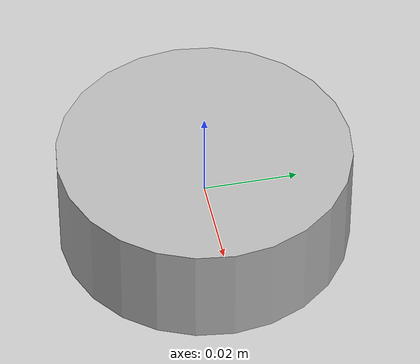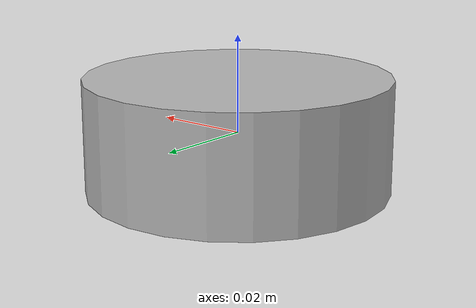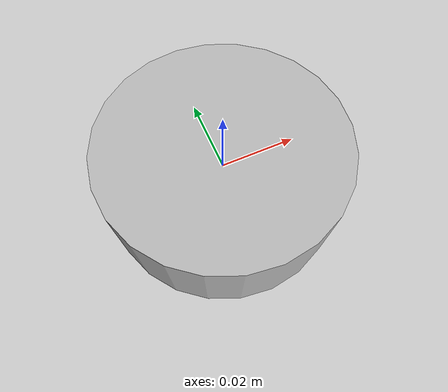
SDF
<?xml version="1.0"?>
<sdf version='1.6'>
    <model name="mid_wheel">
        <static>false</static>
        <link name="mid_wheel">
            <inertial>
                <mass>0.0591</mass>
                <inertia>
                    <ixx>0.000170233</ixx>
                    <ixy>0.0</ixy>
                    <ixz>0.0</ixz>
                    <iyy>0.000170233</iyy>
                    <iyz>0.0</iyz>
                    <izz>0.000286554</izz>
                </inertia>
            </inertial>
            <collision name="collision">
                <geometry>
                    <cylinder>
                        <radius>0.031115</radius>
                        <length>0.023368</length>
                    </cylinder>
                </geometry>
                <surface>
                    <friction>
                        <torsional>
                            <coefficient>0.7</coefficient>
                            <surface_radius>1</surface_radius>
                            <use_patch_radius>false</use_patch_radius>
                        </torsional>
                        <ode>
                            <mu>0.7</mu>
                            <mu2>0.7</mu2>
                            <slip1>0.0</slip1>
                            <slip2>0.0</slip2>
                        </ode>
                    </friction>
                    <contact>
                        <ode>
                            <min_depth>0.005</min_depth>
                            <kp>1e8</kp>
                        </ode>
                    </contact>
                </surface>
            </collision>
            <visual name="visual">
                <geometry>
                    <cylinder>
                        <radius>0.031115</radius>
                        <length>0.023368</length>
                    </cylinder>
                </geometry>
            </visual>
        </link>
    </model>
</sdf>
